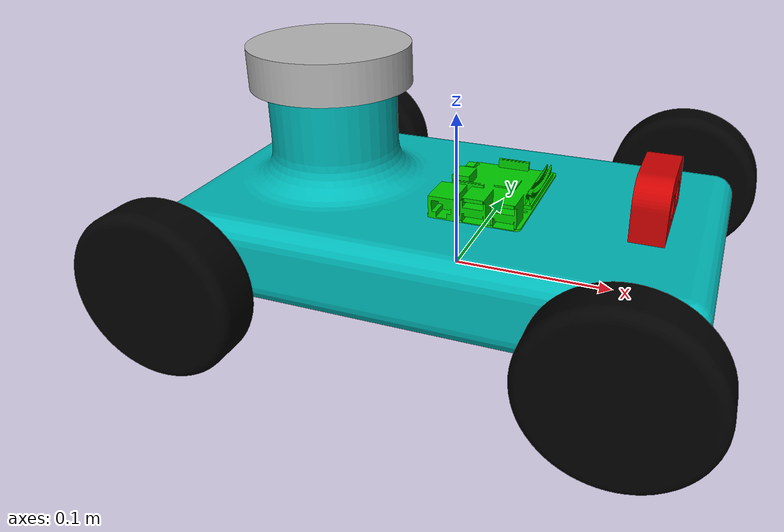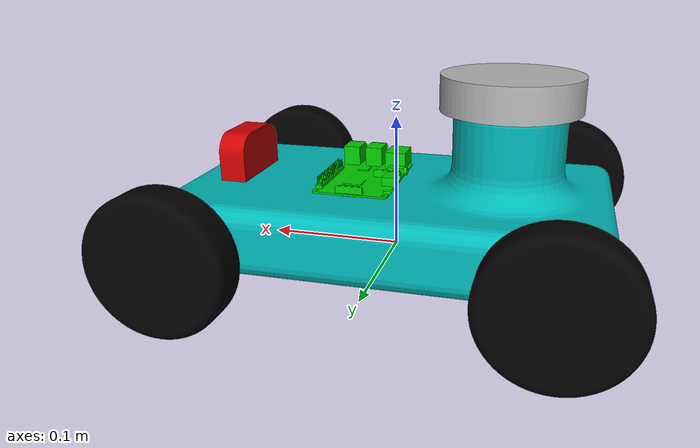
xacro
<?xml version="1.0" ?>
<robot name="arjunamr" xmlns:xacro="http://www.ros.org/wiki/xacro">

<xacro:include filename="$(find arjunamr_description)/urdf/materials.xacro" />
<xacro:include filename="$(find arjunamr_description)/urdf/arjunamr.trans" />
<xacro:include filename="$(find arjunamr_description)/urdf/arjunamr.gazebo" />
<link name="base_link">
  <inertial>
    <origin rpy="0 0 0" xyz="-0.00854526716791335 0.00019359241960205484 0.03046160061738716"/>
    <mass value="8.512359123178545"/>
    <inertia ixx="0.024735" ixy="0.000123" ixz="0.00346" iyy="0.074098" iyz="-7.8e-05" izz="0.090773"/>
  </inertial>
  <visual>
    <origin rpy="0 0 0" xyz="0 0 0"/>
    <geometry>
      <mesh filename="package://arjunamr_description/meshes/base_link.stl" scale="0.001 0.001 0.001"/>
    </geometry>
    <material name="yellow"/>
  </visual>
  <collision>
    <origin rpy="0 0 0" xyz="0 0 0"/>
    <geometry>
      <mesh filename="package://arjunamr_description/meshes/base_link.stl" scale="0.001 0.001 0.001"/>
    </geometry>
  </collision>
</link>

<link name="Lidar_1">
  <inertial>
    <origin rpy="0 0 0" xyz="-2.2682718872624186e-07 -4.73999949509446e-07 0.012500000000000011"/>
    <mass value="0.18692476288859267"/>
    <inertia ixx="0.000127" ixy="-0.0" ixz="-0.0" iyy="0.000127" iyz="-0.0" izz="0.000234"/>
  </inertial>
  <visual>
    <origin rpy="0 0 0" xyz="0.082963 -0.00188 -0.11"/>
    <geometry>
      <mesh filename="package://arjunamr_description/meshes/Lidar_1.stl" scale="0.001 0.001 0.001"/>
    </geometry>
    <material name="silver"/>
  </visual>
  <collision>
    <origin rpy="0 0 0" xyz="0.082963 -0.00188 -0.11"/>
    <geometry>
      <mesh filename="package://arjunamr_description/meshes/Lidar_1.stl" scale="0.001 0.001 0.001"/>
    </geometry>
  </collision>
</link>

<link name="Rightwheel1_1">
  <inertial>
    <origin rpy="0 0 0" xyz="0.0 0.015000000000000027 -1.0408340855860843e-17"/>
    <mass value="0.21473270525562735"/>
    <inertia ixx="0.000147" ixy="0.0" ixz="0.0" iyy="0.000263" iyz="-0.0" izz="0.000147"/>
  </inertial>
  <visual>
    <origin rpy="0 0 0" xyz="-0.125 -0.11 -0.025"/>
    <geometry>
      <mesh filename="package://arjunamr_description/meshes/Rightwheel1_1.stl" scale="0.001 0.001 0.001"/>
    </geometry>
    <material name="black"/>
  </visual>
  <collision>
    <origin rpy="0 0 0" xyz="-0.125 -0.11 -0.025"/>
    <geometry>
      <mesh filename="package://arjunamr_description/meshes/Rightwheel1_1.stl" scale="0.001 0.001 0.001"/>
    </geometry>
  </collision>
</link>

<link name="RightWheel2_1">
  <inertial>
    <origin rpy="0 0 0" xyz="1.3877787807814457e-17 0.015000000000000027 6.938893903907228e-18"/>
    <mass value="0.21473270525562738"/>
    <inertia ixx="0.000147" ixy="-0.0" ixz="0.0" iyy="0.000263" iyz="0.0" izz="0.000147"/>
  </inertial>
  <visual>
    <origin rpy="0 0 0" xyz="0.125 -0.11 -0.025"/>
    <geometry>
      <mesh filename="package://arjunamr_description/meshes/RightWheel2_1.stl" scale="0.001 0.001 0.001"/>
    </geometry>
    <material name="black"/>
  </visual>
  <collision>
    <origin rpy="0 0 0" xyz="0.125 -0.11 -0.025"/>
    <geometry>
      <mesh filename="package://arjunamr_description/meshes/RightWheel2_1.stl" scale="0.001 0.001 0.001"/>
    </geometry>
  </collision>
</link>

<link name="Leftwheel2_1">
  <inertial>
    <origin rpy="0 0 0" xyz="1.3877787807814457e-17 -0.015 -6.938893903907228e-18"/>
    <mass value="0.2147327052556273"/>
    <inertia ixx="0.000147" ixy="0.0" ixz="0.0" iyy="0.000263" iyz="0.0" izz="0.000147"/>
  </inertial>
  <visual>
    <origin rpy="0 0 0" xyz="0.125 0.11 -0.025"/>
    <geometry>
      <mesh filename="package://arjunamr_description/meshes/Leftwheel2_1.stl" scale="0.001 0.001 0.001"/>
    </geometry>
    <material name="black"/>
  </visual>
  <collision>
    <origin rpy="0 0 0" xyz="0.125 0.11 -0.025"/>
    <geometry>
      <mesh filename="package://arjunamr_description/meshes/Leftwheel2_1.stl" scale="0.001 0.001 0.001"/>
    </geometry>
  </collision>
</link>

<link name="Leftwheel1_1">
  <inertial>
    <origin rpy="0 0 0" xyz="2.7755575615628914e-17 -0.015000000000000083 -1.0408340855860843e-17"/>
    <mass value="0.21473270525562732"/>
    <inertia ixx="0.000147" ixy="-0.0" ixz="0.0" iyy="0.000263" iyz="-0.0" izz="0.000147"/>
  </inertial>
  <visual>
    <origin rpy="0 0 0" xyz="-0.125 0.11 -0.025"/>
    <geometry>
      <mesh filename="package://arjunamr_description/meshes/Leftwheel1_1.stl" scale="0.001 0.001 0.001"/>
    </geometry>
    <material name="black"/>
  </visual>
  <collision>
    <origin rpy="0 0 0" xyz="-0.125 0.11 -0.025"/>
    <geometry>
      <mesh filename="package://arjunamr_description/meshes/Leftwheel1_1.stl" scale="0.001 0.001 0.001"/>
    </geometry>
  </collision>
</link>

<link name="camera_1">
  <inertial>
    <origin rpy="0 0 0" xyz="-0.04086055601459972 -1.3911421002075886e-14 0.03256937405777325"/>
    <mass value="0.05694653926634257"/>
    <inertia ixx="3e-05" ixy="0.0" ixz="-1e-06" iyy="1.5e-05" iyz="0.0" izz="1.8e-05"/>
  </inertial>
  <visual>
    <origin rpy="0 0 0" xyz="-0.16 -0.0 -0.025"/>
    <geometry>
      <mesh filename="package://arjunamr_description/meshes/camera_1.stl" scale="0.001 0.001 0.001"/>
    </geometry>
    <material name="red"/>
  </visual>
  <collision>
    <origin rpy="0 0 0" xyz="-0.16 -0.0 -0.025"/>
    <geometry>
      <mesh filename="package://arjunamr_description/meshes/camera_1.stl" scale="0.001 0.001 0.001"/>
    </geometry>
  </collision>
</link>

<link name="Rpi_1">
  <inertial>
    <origin rpy="0 0 0" xyz="0.02324599163491371 -0.013965472519732503 0.005888830680916786"/>
    <mass value="0.13472167579144534"/>
    <inertia ixx="8.3e-05" ixy="0.0" ixz="0.0" iyy="4.1e-05" iyz="9e-06" izz="0.000118"/>
  </inertial>
  <visual>
    <origin rpy="0 0 0" xyz="-0.0 -0.0 -0.05"/>
    <geometry>
      <mesh filename="package://arjunamr_description/meshes/Rpi_1.stl" scale="0.001 0.001 0.001"/>
    </geometry>
    <material name="green"/>
  </visual>
  <collision>
    <origin rpy="0 0 0" xyz="-0.0 -0.0 -0.05"/>
    <geometry>
      <mesh filename="package://arjunamr_description/meshes/Rpi_1.stl" scale="0.001 0.001 0.001"/>
    </geometry>
  </collision>
</link>

<joint name="Lidar_1" type="fixed">
  <origin rpy="0 0 0" xyz="-0.082963 0.00188 0.11"/>
  <parent link="base_link"/>
  <child link="Lidar_1"/>
</joint>

<joint name="RW1" type="continuous">
  <origin rpy="0 0 0" xyz="0.125 0.11 0.025"/>
  <parent link="base_link"/>
  <child link="Rightwheel1_1"/>
  <axis xyz="0.0 1.0 0.0"/>
</joint>

<joint name="RW2" type="continuous">
  <origin rpy="0 0 0" xyz="-0.125 0.11 0.025"/>
  <parent link="base_link"/>
  <child link="RightWheel2_1"/>
  <axis xyz="0.0 1.0 0.0"/>
</joint>

<joint name="LW2" type="continuous">
  <origin rpy="0 0 0" xyz="-0.125 -0.11 0.025"/>
  <parent link="base_link"/>
  <child link="Leftwheel2_1"/>
  <axis xyz="0.0 1.0 0.0"/>
</joint>

<joint name="LW1" type="continuous">
  <origin rpy="0 0 0" xyz="0.125 -0.11 0.025"/>
  <parent link="base_link"/>
  <child link="Leftwheel1_1"/>
  <axis xyz="0.0 1.0 0.0"/>
</joint>

<joint name="camera" type="fixed">
  <origin rpy="0 0 0" xyz="0.16 0.0 0.025"/>
  <parent link="base_link"/>
  <child link="camera_1"/>
</joint>

<joint name="Rpi" type="fixed">
  <origin rpy="0 0 0" xyz="0.0 0.0 0.05"/>
  <parent link="base_link"/>
  <child link="Rpi_1"/>
</joint>

</robot>

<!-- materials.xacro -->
<robot name="arjunamr" xmlns:xacro="http://www.ros.org/wiki/xacro" >

  <material name="silver">
    <color rgba="0.700 0.700 0.700 1.000"/>
  </material>

  <material name="black">
    <color rgba="0.0 0.0 0.0 1.0"/>
  </material>

  <material name="blue">
    <color rgba="0.0 0.0 0.8 1.0"/>
  </material>

  <material name="green">
    <color rgba="0.0 0.8 0.0 1.0"/>
  </material>

  <material name="grey">
    <color rgba="0.2 0.2 0.2 1.0"/>
  </material>

  <material name="orange">
    <color rgba="${255/255} ${108/255} ${10/255} 1.0"/>
  </material>

  <material name="brown">
    <color rgba="${222/255} ${207/255} ${195/255} 1.0"/>
  </material>

  <material name="yellow">
    <color rgba="${0/255} ${180/255} ${180/255} 1.0"/>
  </material>

  <material name="red">
    <color rgba="0.8 0.0 0.0 1.0"/>
  </material>

  <material name="white">
    <color rgba="1.0 1.0 1.0 1.0"/>
  </material>

</robot>

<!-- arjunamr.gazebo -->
<robot name="arjunamr" xmlns:xacro="http://www.ros.org/wiki/xacro" >

<xacro:property name="body_color" value="Gazebo/Yellow" />
<xacro:property name="wheel_color" value="Gazebo/FlatBlack" />
<xacro:property name="Lidar_color" value="Gazebo/Silver" />
<xacro:property name="Rpi_color" value="Gazebo/Green" />
<xacro:property name="camera_color" value="Gazebo/Red" />

<gazebo>
  <plugin filename="libgazebo_ros_control.so" name="control"/>
</gazebo>
<gazebo reference="base_link">
  <material>${body_color}</material>
  <mu1>0.2</mu1>
  <mu2>0.2</mu2>
  <selfCollide>true</selfCollide>
  <gravity>true</gravity>
</gazebo>

<gazebo reference="Lidar_1">
  <material>${Lidar_color}</material>
  <mu1>0.2</mu1>
  <mu2>0.2</mu2>
  <selfCollide>true</selfCollide>
</gazebo>

<gazebo reference="Rightwheel1_1">
  <material>${wheel_color}</material>
  <mu1>80</mu1>
  <mu2>80</mu2>
  <selfCollide>true</selfCollide>
</gazebo>

<gazebo reference="RightWheel2_1">
  <material>${wheel_color}</material>
  <mu1>80</mu1>
  <mu2>80</mu2>
  <selfCollide>true</selfCollide>
</gazebo>

<gazebo reference="Leftwheel2_1">
  <material>${wheel_color}</material>
  <mu1>80</mu1>
  <mu2>80</mu2>
  <selfCollide>true</selfCollide>
</gazebo>

<gazebo reference="Leftwheel1_1">
  <material>${wheel_color}</material>
  <mu1>80</mu1>
  <mu2>80</mu2>
  <selfCollide>true</selfCollide>
</gazebo>

<gazebo reference="camera_1">
  <material>${camera_color}</material>
  <mu1>0.2</mu1>
  <mu2>0.2</mu2>
  <selfCollide>true</selfCollide>
</gazebo>

<gazebo reference="Rpi_1">
  <material>${Rpi_color}</material>
  <mu1>0.2</mu1>
  <mu2>0.2</mu2>
  <selfCollide>true</selfCollide>
</gazebo>

<gazebo>
  <plugin name="skid_steer_drive_controller" filename="libgazebo_ros_skid_steer_drive.so">
    <updateRate>100.0</updateRate>
    <robotNamespace>/</robotNamespace>
    <leftFrontJoint>LW1</leftFrontJoint>
    <rightFrontJoint>RW1</rightFrontJoint>
    <leftRearJoint>LW2</leftRearJoint>
    <rightRearJoint>RW2</rightRearJoint>
    <wheelSeparation>0.250</wheelSeparation>
    <wheelDiameter>0.100</wheelDiameter>
    <wheelAcceleration>0.3</wheelAcceleration>
    <robotBaseFrame>base_link</robotBaseFrame>
    <torque>10</torque>
    <commandTopic>cmd_vel</commandTopic>
    <broadcastTF>true</broadcastTF>
    <odometryTopic>odom</odometryTopic>
    <odometryFrame>odom</odometryFrame>
    <publishOdom>true</publishOdom>

  </plugin>
</gazebo>

<gazebo reference="Lidar_1">
    <material>Gazebo/FlatBlack</material>
    <sensor type="ray" name="RPLIDAR">
      <pose>0 0 0 0 0 0</pose>
      <visualize>False</visualize>
      <update_rate>5</update_rate>
      <ray>
        <scan>
          <horizontal>
            <samples>360</samples>
            <resolution>1</resolution>
            <min_angle>-3.14</min_angle>
            <max_angle>3.14</max_angle>
          </horizontal>
        </scan>
        <range>
          <min>0.130</min>
          <max>5.0</max>
          <resolution>0.15</resolution>
        </range>
        <noise>
          <type>gaussian</type>
          <mean>0.0</mean>
          <stddev>0.01</stddev>
        </noise>
      </ray>
      <plugin name="gazebo_ros_head_hokuyo_controller" filename="libgazebo_ros_laser.so">
        <topicName>scan</topicName>
        <frameName>Lidar_1</frameName>
      </plugin>
    </sensor>
  </gazebo>

  <gazebo reference="camera_1">
    <sensor type="camera" name="Pi Camera">
      <always_on>true</always_on>
      <visualize>False</visualize>
      <camera>
          <horizontal_fov>1.085595</horizontal_fov>
          <image>
              <width>750</width>
              <height>500</height>
              <format>R8G8B8</format>
          </image>
          <clip>
              <near>0.03</near>
              <far>100</far>
          </clip>
      </camera>
      <plugin name="camera_controller" filename="libgazebo_ros_camera.so">
        <alwaysOn>true</alwaysOn>
        <updateRate>30.0</updateRate>
        <cameraName>camera</cameraName>
        <frameName>camera_rgb_optical_frame</frameName>
        <imageTopicName>rgb/image_raw</imageTopicName>
        <cameraInfoTopicName>rgb/camera_info</cameraInfoTopicName>
        <hackBaseline>0.07</hackBaseline>
        <distortionK1>0.0</distortionK1>
        <distortionK2>0.0</distortionK2>
        <distortionK3>0.0</distortionK3>
        <distortionT1>0.0</distortionT1>
        <distortionT2>0.0</distortionT2>
      </plugin>
    </sensor>
  </gazebo>

</robot>
